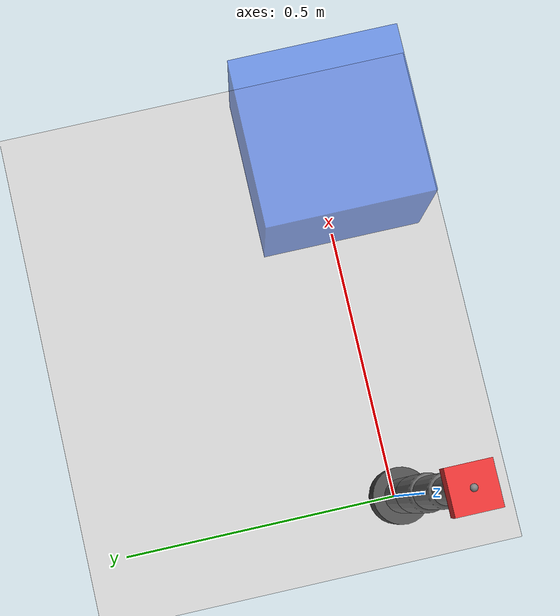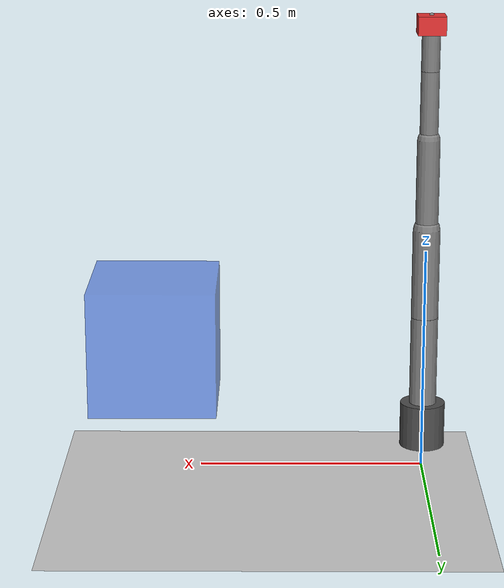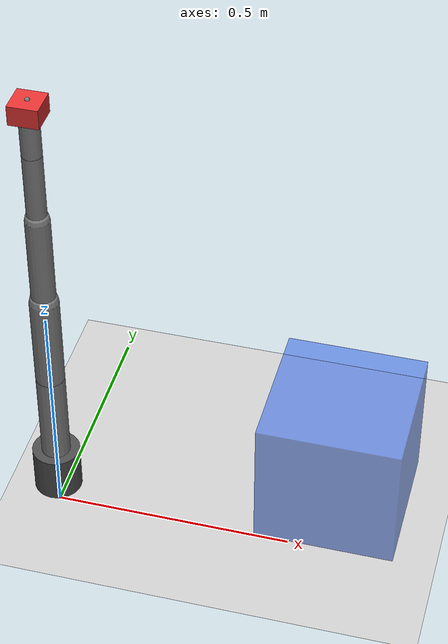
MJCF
<!-- 占位场景: 6 轴串联臂 + 地面 + 兑换站占位块.
     TODO: 用你机器人的真实 URDF/MJCF 替换. 关节数、link 尺寸、惯量均为占位. -->
<mujoco model="engineer_scene">
  <compiler angle="radian" autolimits="true"/>
  <option timestep="0.002" gravity="0 0 -9.81"/>

  <worldbody>
    <light pos="0 0 3" dir="0 0 -1"/>
    <geom name="floor" type="plane" size="3 3 0.1" rgba="0.8 0.8 0.8 1"/>

    <!-- ===== 6 轴机械臂 (占位链, 每节 0.2m) ===== -->
    <body name="base" pos="0 0 0.1">
      <geom type="cylinder" size="0.05 0.05" rgba="0.3 0.3 0.3 1"/>
      <body name="l1" pos="0 0 0.05">
        <joint name="j1" type="hinge" axis="0 0 1" range="-3.14 3.14"/>
        <geom type="capsule" fromto="0 0 0 0 0 0.2" size="0.03"/>
        <body name="l2" pos="0 0 0.2">
          <joint name="j2" type="hinge" axis="0 1 0" range="-3.14 3.14"/>
          <geom type="capsule" fromto="0 0 0 0 0 0.2" size="0.03"/>
          <body name="l3" pos="0 0 0.2">
            <joint name="j3" type="hinge" axis="0 1 0" range="-3.14 3.14"/>
            <geom type="capsule" fromto="0 0 0 0 0 0.2" size="0.025"/>
            <body name="l4" pos="0 0 0.2">
              <joint name="j4" type="hinge" axis="0 0 1" range="-3.14 3.14"/>
              <geom type="capsule" fromto="0 0 0 0 0 0.15" size="0.02"/>
              <body name="l5" pos="0 0 0.15">
                <joint name="j5" type="hinge" axis="0 1 0" range="-3.14 3.14"/>
                <geom type="capsule" fromto="0 0 0 0 0 0.1" size="0.02"/>
                <body name="l6" pos="0 0 0.1">
                  <joint name="j6" type="hinge" axis="0 0 1" range="-3.14 3.14"/>
                  <geom name="tcp" type="box" size="0.03 0.03 0.02" rgba="0.9 0.2 0.2 1"/>
                  <site name="tcp_site" pos="0 0 0.02"/>
                </body>
              </body>
            </body>
          </body>
        </body>
      </body>
    </body>

    <!-- ===== 兑换站占位 (能量单元装配目标) ===== -->
    <body name="exchange_station" pos="0.6 0 0.3">
      <geom type="box" size="0.14 0.14 0.14" rgba="0.2 0.4 0.9 0.6"/>
    </body>
  </worldbody>

  <actuator>
    <position joint="j1" kp="50"/>
    <position joint="j2" kp="50"/>
    <position joint="j3" kp="50"/>
    <position joint="j4" kp="30"/>
    <position joint="j5" kp="30"/>
    <position joint="j6" kp="20"/>
  </actuator>
</mujoco>
